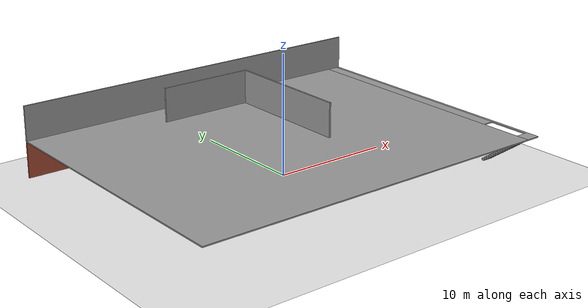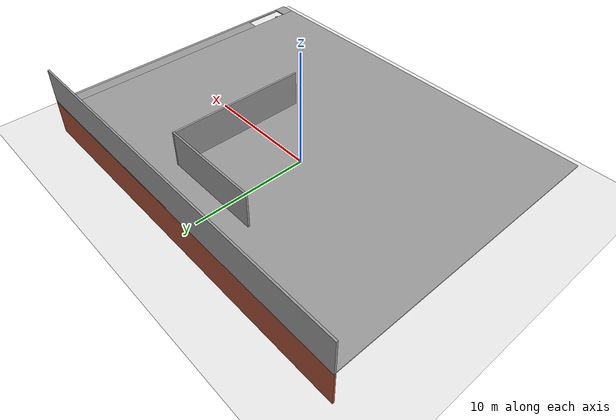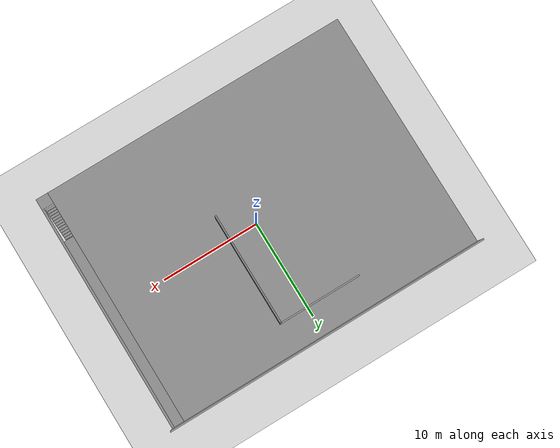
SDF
<sdf version="1.6">
 <world name="default">
  <model name="ground_plane">
   <static>1</static>
   <link name="link">
    <collision name="collision">
     <geometry><plane><normal>0 0 1</normal><size>100 100</size></plane></geometry>
     <surface><friction><ode><mu>100</mu><mu2>50</mu2></ode></friction></surface>
    </collision>
    <visual name="visual">
     <cast_shadows>0</cast_shadows>
     <geometry><plane><normal>0 0 1</normal><size>100 100</size></plane></geometry>
     <material>
      <script><uri>file://media/materials/scripts/gazebo.material</uri><name>Gazebo/White</name></script>
     </material>
    </visual>
   </link>
  </model>
  <model name="test_building">
   <link name="Floor_0">
    <pose>0 0 3 0 -0 0</pose>
    <visual name="Floor_0_Visual_0">
     <pose>-0.613364 0 0.05 0 -0 0</pose>
     <geometry><box><size>30.9233 24.15 0.1</size></box></geometry>
     <material>
      <script><uri>file://media/materials/scripts/gazebo.material</uri><name>Gazebo/Grey</name></script>
      <ambient>1 1 1 1</ambient>
     </material>
     <meta><layer>1</layer></meta>
    </visual>
    <collision name="Floor_0_Collision_0">
     <geometry><box><size>30.9233 24.15 0.1</size></box></geometry>
     <pose>-0.613364 0 0.05 0 -0 0</pose>
    </collision>
    <visual name="Floor_0_Visual_1">
     <pose>15.4616 -11.5174 0.05 0 -0 0</pose>
     <geometry><box><size>1.22673 1.11518 0.1</size></box></geometry>
     <material>
      <script><uri>file://media/materials/scripts/gazebo.material</uri><name>Gazebo/Grey</name></script>
      <ambient>1 1 1 1</ambient>
     </material>
     <meta><layer>1</layer></meta>
    </visual>
    <collision name="Floor_0_Collision_1">
     <geometry><box><size>1.22673 1.11518 0.1</size></box></geometry>
     <pose>15.4616 -11.5174 0.05 0 -0 0</pose>
    </collision>
    <visual name="Floor_0_Visual_2">
     <pose>15.9616 0.557588 0.05 0 -0 0</pose>
     <geometry><box><size>0.226729 23.0348 0.1</size></box></geometry>
     <material>
      <script><uri>file://media/materials/scripts/gazebo.material</uri><name>Gazebo/Grey</name></script>
      <ambient>1 1 1 1</ambient>
     </material>
     <meta><layer>1</layer></meta>
    </visual>
    <collision name="Floor_0_Collision_2">
     <geometry><box><size>0.226729 23.0348 0.1</size></box></geometry>
     <pose>15.9616 0.557588 0.05 0 -0 0</pose>
    </collision>
    <visual name="Floor_0_Visual_3">
     <pose>15.3483 2.30759 0.05 0 -0 0</pose>
     <geometry><box><size>1 19.5348 0.1</size></box></geometry>
     <material>
      <script><uri>file://media/materials/scripts/gazebo.material</uri><name>Gazebo/Grey</name></script>
      <ambient>1 1 1 1</ambient>
     </material>
     <meta><layer>1</layer></meta>
    </visual>
    <collision name="Floor_0_Collision_3">
     <geometry><box><size>1 19.5348 0.1</size></box></geometry>
     <pose>15.3483 2.30759 0.05 0 -0 0</pose>
    </collision>
   </link>
   <link name="Stairs_1">
    <visual name="Stairs_1_Visual_0">
     <pose>15.3483 -7.57649 0.083333 0 -0 0</pose>
     <geometry><box><size>1 0.233333 0.166667</size></box></geometry>
     <material>
      <script><uri>file://media/materials/scripts/gazebo.material</uri><name>Gazebo/Grey</name></script>
      <ambient>1 1 1 1</ambient>
     </material>
     <meta><layer>0</layer></meta>
    </visual>
    <collision name="Stairs_1_Collision_0">
     <geometry><box><size>1 0.233333 0.166667</size></box></geometry>
     <pose>15.3483 -7.57649 0.083333 0 -0 0</pose>
    </collision>
    <visual name="Stairs_1_Visual_1">
     <pose>15.3483 -7.80982 0.25 0 -0 0</pose>
     <geometry><box><size>1 0.233333 0.166667</size></box></geometry>
     <material>
      <script><uri>file://media/materials/scripts/gazebo.material</uri><name>Gazebo/Grey</name></script>
      <ambient>1 1 1 1</ambient>
     </material>
     <meta><layer>0</layer></meta>
    </visual>
    <collision name="Stairs_1_Collision_1">
     <geometry><box><size>1 0.233333 0.166667</size></box></geometry>
     <pose>15.3483 -7.80982 0.25 0 -0 0</pose>
    </collision>
    <visual name="Stairs_1_Visual_2">
     <pose>15.3483 -8.04316 0.416667 0 -0 0</pose>
     <geometry><box><size>1 0.233333 0.166667</size></box></geometry>
     <material>
      <script><uri>file://media/materials/scripts/gazebo.material</uri><name>Gazebo/Grey</name></script>
      <ambient>1 1 1 1</ambient>
     </material>
     <meta><layer>0</layer></meta>
    </visual>
    <collision name="Stairs_1_Collision_2">
     <geometry><box><size>1 0.233333 0.166667</size></box></geometry>
     <pose>15.3483 -8.04316 0.416667 0 -0 0</pose>
    </collision>
    <visual name="Stairs_1_Visual_3">
     <pose>15.3483 -8.27649 0.583333 0 -0 0</pose>
     <geometry><box><size>1 0.233333 0.166667</size></box></geometry>
     <material>
      <script><uri>file://media/materials/scripts/gazebo.material</uri><name>Gazebo/Grey</name></script>
      <ambient>1 1 1 1</ambient>
     </material>
     <meta><layer>0</layer></meta>
    </visual>
    <collision name="Stairs_1_Collision_3">
     <geometry><box><size>1 0.233333 0.166667</size></box></geometry>
     <pose>15.3483 -8.27649 0.583333 0 -0 0</pose>
    </collision>
    <visual name="Stairs_1_Visual_4">
     <pose>15.3483 -8.50982 0.75 0 -0 0</pose>
     <geometry><box><size>1 0.233333 0.166667</size></box></geometry>
     <material>
      <script><uri>file://media/materials/scripts/gazebo.material</uri><name>Gazebo/Grey</name></script>
      <ambient>1 1 1 1</ambient>
     </material>
     <meta><layer>0</layer></meta>
    </visual>
    <collision name="Stairs_1_Collision_4">
     <geometry><box><size>1 0.233333 0.166667</size></box></geometry>
     <pose>15.3483 -8.50982 0.75 0 -0 0</pose>
    </collision>
    <visual name="Stairs_1_Visual_5">
     <pose>15.3483 -8.74316 0.916667 0 -0 0</pose>
     <geometry><box><size>1 0.233333 0.166667</size></box></geometry>
     <material>
      <script><uri>file://media/materials/scripts/gazebo.material</uri><name>Gazebo/Grey</name></script>
      <ambient>1 1 1 1</ambient>
     </material>
     <meta><layer>0</layer></meta>
    </visual>
    <collision name="Stairs_1_Collision_5">
     <geometry><box><size>1 0.233333 0.166667</size></box></geometry>
     <pose>15.3483 -8.74316 0.916667 0 -0 0</pose>
    </collision>
    <visual name="Stairs_1_Visual_6">
     <pose>15.3483 -8.97649 1.08333 0 -0 0</pose>
     <geometry><box><size>1 0.233333 0.166667</size></box></geometry>
     <material>
      <script><uri>file://media/materials/scripts/gazebo.material</uri><name>Gazebo/Grey</name></script>
      <ambient>1 1 1 1</ambient>
     </material>
     <meta><layer>0</layer></meta>
    </visual>
    <collision name="Stairs_1_Collision_6">
     <geometry><box><size>1 0.233333 0.166667</size></box></geometry>
     <pose>15.3483 -8.97649 1.08333 0 -0 0</pose>
    </collision>
    <visual name="Stairs_1_Visual_7">
     <pose>15.3483 -9.20983 1.25 0 -0 0</pose>
     <geometry><box><size>1 0.233333 0.166667</size></box></geometry>
     <material>
      <script><uri>file://media/materials/scripts/gazebo.material</uri><name>Gazebo/Grey</name></script>
      <ambient>1 1 1 1</ambient>
     </material>
     <meta><layer>0</layer></meta>
    </visual>
    <collision name="Stairs_1_Collision_7">
     <geometry><box><size>1 0.233333 0.166667</size></box></geometry>
     <pose>15.3483 -9.20983 1.25 0 -0 0</pose>
    </collision>
    <visual name="Stairs_1_Visual_8">
     <pose>15.3483 -9.44316 1.41667 0 -0 0</pose>
     <geometry><box><size>1 0.233333 0.166667</size></box></geometry>
     <material>
      <script><uri>file://media/materials/scripts/gazebo.material</uri><name>Gazebo/Grey</name></script>
      <ambient>1 1 1 1</ambient>
     </material>
     <meta><layer>0</layer></meta>
    </visual>
    <collision name="Stairs_1_Collision_8">
     <geometry><box><size>1 0.233333 0.166667</size></box></geometry>
     <pose>15.3483 -9.44316 1.41667 0 -0 0</pose>
    </collision>
    <visual name="Stairs_1_Visual_9">
     <pose>15.3483 -9.67649 1.58333 0 -0 0</pose>
     <geometry><box><size>1 0.233333 0.166667</size></box></geometry>
     <material>
      <script><uri>file://media/materials/scripts/gazebo.material</uri><name>Gazebo/Grey</name></script>
      <ambient>1 1 1 1</ambient>
     </material>
     <meta><layer>0</layer></meta>
    </visual>
    <collision name="Stairs_1_Collision_9">
     <geometry><box><size>1 0.233333 0.166667</size></box></geometry>
     <pose>15.3483 -9.67649 1.58333 0 -0 0</pose>
    </collision>
    <visual name="Stairs_1_Visual_10">
     <pose>15.3483 -9.90982 1.75 0 -0 0</pose>
     <geometry><box><size>1 0.233333 0.166667</size></box></geometry>
     <material>
      <script><uri>file://media/materials/scripts/gazebo.material</uri><name>Gazebo/Grey</name></script>
      <ambient>1 1 1 1</ambient>
     </material>
     <meta><layer>0</layer></meta>
    </visual>
    <collision name="Stairs_1_Collision_10">
     <geometry><box><size>1 0.233333 0.166667</size></box></geometry>
     <pose>15.3483 -9.90982 1.75 0 -0 0</pose>
    </collision>
    <visual name="Stairs_1_Visual_11">
     <pose>15.3483 -10.1432 1.91667 0 -0 0</pose>
     <geometry><box><size>1 0.233333 0.166667</size></box></geometry>
     <material>
      <script><uri>file://media/materials/scripts/gazebo.material</uri><name>Gazebo/Grey</name></script>
      <ambient>1 1 1 1</ambient>
     </material>
     <meta><layer>0</layer></meta>
    </visual>
    <collision name="Stairs_1_Collision_11">
     <geometry><box><size>1 0.233333 0.166667</size></box></geometry>
     <pose>15.3483 -10.1432 1.91667 0 -0 0</pose>
    </collision>
    <visual name="Stairs_1_Visual_12">
     <pose>15.3483 -10.3765 2.08333 0 -0 0</pose>
     <geometry><box><size>1 0.233333 0.166667</size></box></geometry>
     <material>
      <script><uri>file://media/materials/scripts/gazebo.material</uri><name>Gazebo/Grey</name></script>
      <ambient>1 1 1 1</ambient>
     </material>
     <meta><layer>0</layer></meta>
    </visual>
    <collision name="Stairs_1_Collision_12">
     <geometry><box><size>1 0.233333 0.166667</size></box></geometry>
     <pose>15.3483 -10.3765 2.08333 0 -0 0</pose>
    </collision>
    <visual name="Stairs_1_Visual_13">
     <pose>15.3483 -10.6098 2.25 0 -0 0</pose>
     <geometry><box><size>1 0.233333 0.166667</size></box></geometry>
     <material>
      <script><uri>file://media/materials/scripts/gazebo.material</uri><name>Gazebo/Grey</name></script>
      <ambient>1 1 1 1</ambient>
     </material>
     <meta><layer>0</layer></meta>
    </visual>
    <collision name="Stairs_1_Collision_13">
     <geometry><box><size>1 0.233333 0.166667</size></box></geometry>
     <pose>15.3483 -10.6098 2.25 0 -0 0</pose>
    </collision>
    <visual name="Stairs_1_Visual_14">
     <pose>15.3483 -10.8432 2.41667 0 -0 0</pose>
     <geometry><box><size>1 0.233333 0.166667</size></box></geometry>
     <material>
      <script><uri>file://media/materials/scripts/gazebo.material</uri><name>Gazebo/Grey</name></script>
      <ambient>1 1 1 1</ambient>
     </material>
     <meta><layer>0</layer></meta>
    </visual>
    <collision name="Stairs_1_Collision_14">
     <geometry><box><size>1 0.233333 0.166667</size></box></geometry>
     <pose>15.3483 -10.8432 2.41667 0 -0 0</pose>
    </collision>
   </link>
   <link name="Wall_2">
    <collision name="Wall_2_Collision">
     <geometry><box><size>32.15 0.15 3</size></box></geometry>
     <pose>0 0 1.5 0 -0 0</pose>
    </collision>
    <visual name="Wall_2_Visual">
     <pose>0 0 1.5 0 -0 0</pose>
     <geometry><box><size>32.15 0.15 3</size></box></geometry>
     <material>
      <script><uri>file://media/materials/scripts/gazebo.material</uri><name>Gazebo/Bricks</name></script>
      <ambient>1 1 1 1</ambient>
     </material>
     <meta><layer>0</layer></meta>
    </visual>
    <pose>0 12 0 0 -0 3.14159</pose>
   </link>
   <link name="Wall_22">
    <collision name="Wall_22_Collision">
     <geometry><box><size>11.15 0.15 3</size></box></geometry>
     <pose>0 0 1.5 0 -0 0</pose>
    </collision>
    <visual name="Wall_22_Visual">
     <pose>0 0 1.5 0 -0 0</pose>
     <geometry><box><size>11.15 0.15 3</size></box></geometry>
     <material>
      <script><uri>file://media/materials/scripts/gazebo.material</uri><name>Gazebo/CeilingTiled</name></script>
      <ambient>0.435294 0.796078 0.67451 1</ambient>
     </material>
     <meta><layer>0</layer></meta>
    </visual>
    <pose>3 3.5 0 0 -0 1.5708</pose>
   </link>
   <link name="Wall_23">
    <pose>-1 9 0 0 -0 3.14159</pose>
    <visual name="Wall_23_Visual_0">
     <pose>-2.29553 0 1.5 0 -0 0</pose>
     <geometry><box><size>3.55895 0.15 3</size></box></geometry>
     <material>
      <script><uri>file://media/materials/scripts/gazebo.material</uri><name>Gazebo/CeilingTiled</name></script>
      <ambient>0.435294 0.796078 0.67451 1</ambient>
     </material>
     <meta><layer>0</layer></meta>
    </visual>
    <collision name="Wall_23_Collision_0">
     <geometry><box><size>3.55895 0.15 3</size></box></geometry>
     <pose>-2.29553 0 1.5 0 -0 0</pose>
    </collision>
    <visual name="Wall_23_Visual_1">
     <pose>2.27948 0 1.5 0 -0 0</pose>
     <geometry><box><size>3.59105 0.15 3</size></box></geometry>
     <material>
      <script><uri>file://media/materials/scripts/gazebo.material</uri><name>Gazebo/CeilingTiled</name></script>
      <ambient>0.435294 0.796078 0.67451 1</ambient>
     </material>
     <meta><layer>0</layer></meta>
    </visual>
    <collision name="Wall_23_Collision_1">
     <geometry><box><size>3.59105 0.15 3</size></box></geometry>
     <pose>2.27948 0 1.5 0 -0 0</pose>
    </collision>
    <visual name="Wall_23_Visual_2">
     <pose>-0.016051 0 2.5 0 -0 0</pose>
     <geometry><box><size>1 0.15 1</size></box></geometry>
     <material>
      <script><uri>file://media/materials/scripts/gazebo.material</uri><name>Gazebo/CeilingTiled</name></script>
      <ambient>0.435294 0.796078 0.67451 1</ambient>
     </material>
     <meta><layer>0</layer></meta>
    </visual>
    <collision name="Wall_23_Collision_2">
     <geometry><box><size>1 0.15 1</size></box></geometry>
     <pose>-0.016051 0 2.5 0 -0 0</pose>
    </collision>
   </link>
   <link name="Wall_49">
    <collision name="Wall_49_Collision">
     <geometry><box><size>32.15 0.15 3</size></box></geometry>
     <pose>0 0 1.5 0 -0 0</pose>
    </collision>
    <visual name="Wall_49_Visual">
     <pose>0 0 1.5 0 -0 0</pose>
     <geometry><box><size>32.15 0.15 3</size></box></geometry>
     <material>
      <script><uri>file://media/materials/scripts/gazebo.material</uri><name>Gazebo/Grey</name></script>
      <ambient>1 1 1 1</ambient>
     </material>
     <meta><layer>1</layer></meta>
    </visual>
    <pose>0 12 3 0 -0 3.14159</pose>
   </link>
   <link name="Wall_64">
    <collision name="Wall_64_Collision">
     <geometry><box><size>11.15 0.15 3</size></box></geometry>
     <pose>0 0 1.5 0 -0 0</pose>
    </collision>
    <visual name="Wall_64_Visual">
     <pose>0 0 1.5 0 -0 0</pose>
     <geometry><box><size>11.15 0.15 3</size></box></geometry>
     <material>
      <script><uri>file://media/materials/scripts/gazebo.material</uri><name>Gazebo/Grey</name></script>
      <ambient>1 1 1 1</ambient>
     </material>
     <meta><layer>1</layer></meta>
    </visual>
    <pose>3 3.5 3 0 -0 1.5708</pose>
   </link>
   <link name="Wall_65">
    <collision name="Wall_65_Collision">
     <geometry><box><size>8.15 0.15 3</size></box></geometry>
     <pose>0 0 1.5 0 -0 0</pose>
    </collision>
    <visual name="Wall_65_Visual">
     <pose>0 0 1.5 0 -0 0</pose>
     <geometry><box><size>8.15 0.15 3</size></box></geometry>
     <material>
      <script><uri>file://media/materials/scripts/gazebo.material</uri><name>Gazebo/Grey</name></script>
      <ambient>1 1 1 1</ambient>
     </material>
     <meta><layer>1</layer></meta>
    </visual>
    <pose>-1 9 3 0 -0 3.14159</pose>
   </link>
   <static>1</static>
  </model>
  <model name="cabinet">
   <static>1</static>
   <link name="cabinet_bottom_plate">
    <inertial>
     <pose>0 0 -1 0 -0 0</pose>
     <inertia><ixx>2.05</ixx><ixy>0</ixy><ixz>0</ixz><iyy>2.05</iyy><iyz>0</iyz><izz>2.05</izz></inertia>
     <mass>25</mass>
    </inertial>
    <collision name="cabinet_bottom_plate_geom">
     <pose>0 0 0.01 0 -0 0</pose>
     <geometry><box><size>0.45 0.45 0.02</size></box></geometry>
    </collision>
    <visual name="cabinet_bottom_plate_geom_visual">
     <pose>0 0 0.01 0 -0 0</pose>
     <geometry><box><size>0.45 0.45 0.02</size></box></geometry>
     <material>
      <script><uri>file://media/materials/scripts/gazebo.material</uri><name>Gazebo/Wood</name></script>
     </material>
    </visual>
    <collision name="cabinet_bottom_plate_geom_cabinet_back_plate">
     <pose>0.235 0 0.51 0 -0 0</pose>
     <geometry><box><size>0.02 0.45 1.02</size></box></geometry>
    </collision>
    <visual name="cabinet_bottom_plate_geom_cabinet_back_plate_visual">
     <pose>0.235 0 0.51 0 -0 0</pose>
     <geometry><box><size>0.02 0.45 1.02</size></box></geometry>
     <material>
      <script><uri>file://media/materials/scripts/gazebo.material</uri><name>Gazebo/Wood</name></script>
     </material>
    </visual>
    <collision name="cabinet_bottom_plate_geom_cabinet_left_plate">
     <pose>0 0.235 0.51 0 -0 0</pose>
     <geometry><box><size>0.45 0.02 1.02</size></box></geometry>
    </collision>
    <visual name="cabinet_bottom_plate_geom_cabinet_left_plate_visual">
     <pose>0 0.235 0.51 0 -0 0</pose>
     <geometry><box><size>0.45 0.02 1.02</size></box></geometry>
     <material>
      <script><uri>file://media/materials/scripts/gazebo.material</uri><name>Gazebo/Wood</name></script>
     </material>
    </visual>
    <collision name="cabinet_bottom_plate_geom_cabinet_middle_plate">
     <pose>0 0 0.51 0 -0 0</pose>
     <geometry><box><size>0.45 0.45 0.02</size></box></geometry>
    </collision>
    <visual name="cabinet_bottom_plate_geom_cabinet_middle_plate_visual">
     <pose>0 0 0.51 0 -0 0</pose>
     <geometry><box><size>0.45 0.45 0.02</size></box></geometry>
     <material>
      <script><uri>file://media/materials/scripts/gazebo.material</uri><name>Gazebo/Wood</name></script>
     </material>
    </visual>
    <collision name="cabinet_bottom_plate_geom_cabinet_right_plate">
     <pose>0 -0.235 0.51 0 -0 0</pose>
     <geometry><box><size>0.45 0.02 1.02</size></box></geometry>
    </collision>
    <visual name="cabinet_bottom_plate_geom_cabinet_right_plate_visual">
     <pose>0 -0.235 0.51 0 -0 0</pose>
     <geometry><box><size>0.45 0.02 1.02</size></box></geometry>
     <material>
      <script><uri>file://media/materials/scripts/gazebo.material</uri><name>Gazebo/Wood</name></script>
     </material>
    </visual>
    <collision name="cabinet_bottom_plate_geom_cabinet_top_plate">
     <pose>0 0 1.01 0 -0 0</pose>
     <geometry><box><size>0.45 0.45 0.02</size></box></geometry>
    </collision>
    <visual name="cabinet_bottom_plate_geom_cabinet_top_plate_visual">
     <pose>0 0 1.01 0 -0 0</pose>
     <geometry><box><size>0.45 0.45 0.02</size></box></geometry>
     <material>
      <script><uri>file://media/materials/scripts/gazebo.material</uri><name>Gazebo/Wood</name></script>
     </material>
    </visual>
   </link>
   <pose>3.32808 0.603444 0 0 -0 0</pose>
  </model>
  <model name="bookshelf">
   <static>1</static>
   <link name="link">
    <inertial><mass>1</mass></inertial>
    <collision name="back">
     <pose>0 0.005 0.6 0 -0 0</pose>
     <geometry><box><size>0.9 0.01 1.2</size></box></geometry>
    </collision>
    <visual name="visual1">
     <pose>0 0.005 0.6 0 -0 0</pose>
     <geometry><box><size>0.9 0.01 1.2</size></box></geometry>
     <material>
      <script><uri>file://media/materials/scripts/gazebo.material</uri><name>Gazebo/Wood</name></script>
     </material>
    </visual>
    <collision name="left_side">
     <pose>0.45 -0.195 0.6 0 -0 0</pose>
     <geometry><box><size>0.02 0.4 1.2</size></box></geometry>
    </collision>
    <visual name="visual2">
     <pose>0.45 -0.195 0.6 0 -0 0</pose>
     <geometry><box><size>0.02 0.4 1.2</size></box></geometry>
     <material>
      <script><uri>file://media/materials/scripts/gazebo.material</uri><name>Gazebo/Wood</name></script>
     </material>
    </visual>
    <collision name="right_side">
     <pose>-0.45 -0.195 0.6 0 -0 0</pose>
     <geometry><box><size>0.02 0.4 1.2</size></box></geometry>
    </collision>
    <visual name="visual3">
     <pose>-0.45 -0.195 0.6 0 -0 0</pose>
     <geometry><box><size>0.02 0.4 1.2</size></box></geometry>
     <material>
      <script><uri>file://media/materials/scripts/gazebo.material</uri><name>Gazebo/Wood</name></script>
     </material>
    </visual>
    <collision name="bottom">
     <pose>0 -0.195 0.03 0 -0 0</pose>
     <geometry><box><size>0.88 0.4 0.06</size></box></geometry>
    </collision>
    <visual name="visual4">
     <pose>0 -0.195 0.03 0 -0 0</pose>
     <geometry><box><size>0.88 0.4 0.06</size></box></geometry>
     <material>
      <script><uri>file://media/materials/scripts/gazebo.material</uri><name>Gazebo/Wood</name></script>
     </material>
    </visual>
    <collision name="top">
     <pose>0 -0.195 1.19 0 -0 0</pose>
     <geometry><box><size>0.88 0.4 0.02</size></box></geometry>
    </collision>
    <visual name="visual5">
     <pose>0 -0.195 1.19 0 -0 0</pose>
     <geometry><box><size>0.88 0.4 0.02</size></box></geometry>
     <material>
      <script><uri>file://media/materials/scripts/gazebo.material</uri><name>Gazebo/Wood</name></script>
     </material>
    </visual>
    <collision name="low_shelf">
     <pose>0 -0.195 0.43 0 -0 0</pose>
     <geometry><box><size>0.88 0.4 0.02</size></box></geometry>
    </collision>
    <visual name="visual6">
     <pose>0 -0.195 0.43 0 -0 0</pose>
     <geometry><box><size>0.88 0.4 0.02</size></box></geometry>
     <material>
      <script><uri>file://media/materials/scripts/gazebo.material</uri><name>Gazebo/Wood</name></script>
     </material>
    </visual>
    <collision name="high_shelf">
     <pose>0 -0.195 0.8 0 -0 0</pose>
     <geometry><box><size>0.88 0.4 0.02</size></box></geometry>
    </collision>
    <visual name="visual7">
     <pose>0 -0.195 0.8 0 -0 0</pose>
     <geometry><box><size>0.88 0.4 0.02</size></box></geometry>
     <material>
      <script><uri>file://media/materials/scripts/gazebo.material</uri><name>Gazebo/Wood</name></script>
     </material>
    </visual>
   </link>
   <pose>-1.43901 11.4164 0 0 -0 0</pose>
  </model>
 </world>
</sdf>
